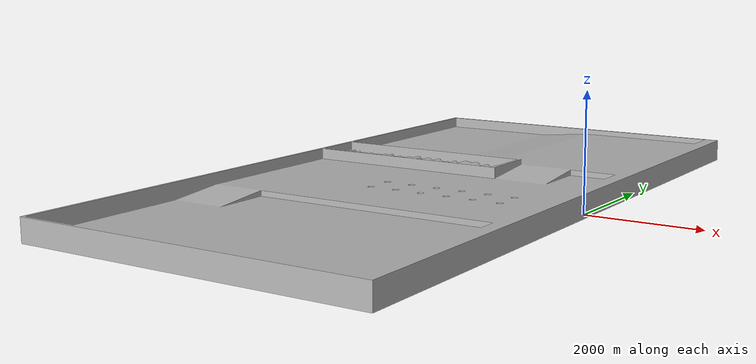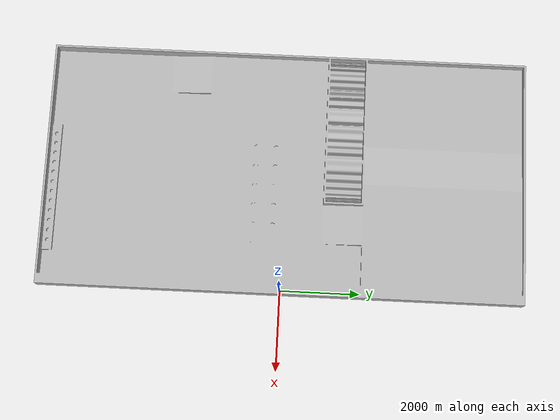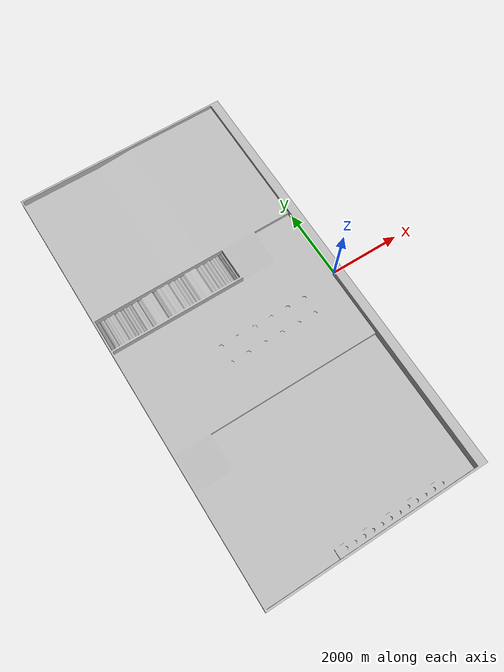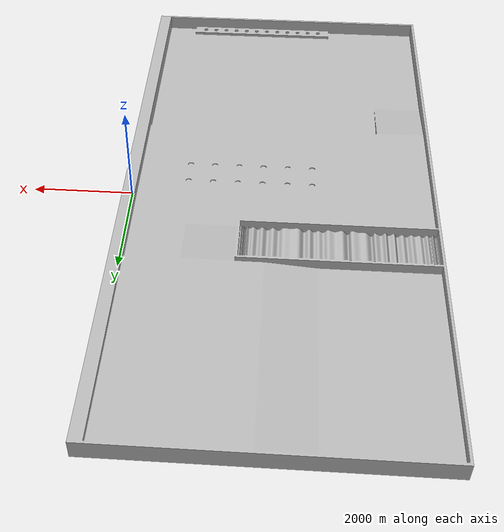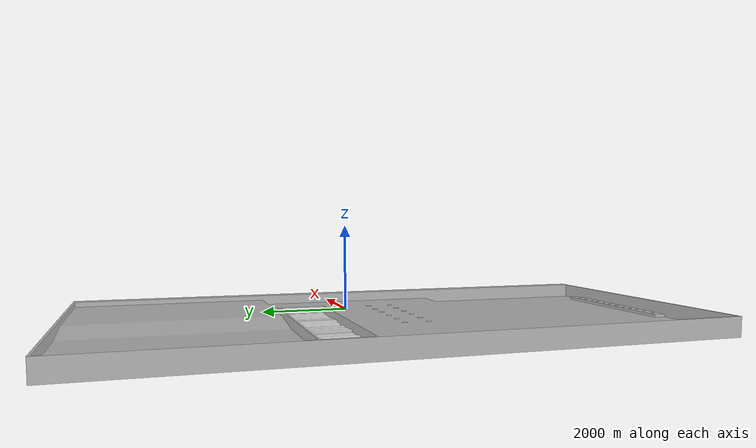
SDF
<?xml version="1.0" ?>
<sdf version="1.6">
  <model name="rc_cd">
    <static>true</static>
    <link name="link">
      <inertial>
        <pose>-43.151 -9.4559 36.683 0 0 0</pose>
        <mass>10402000</mass>
        <inertia>
          <ixx>3970000000</ixx>
          <ixy>20876000</ixy>
          <ixz>613230000</ixz>
          <iyy>9033200000</iyy>
          <iyz>-269580000</iyz>
          <izz>5839000000</izz>
        </inertia>
      </inertial>
      <collision name="collision">
        <geometry>
          <mesh>
            <uri>model://rc_cd/meshes/Arena_24.dae</uri>
          </mesh>
        </geometry>
      </collision>
      <visual name="visual">
        <geometry>
          <mesh>
            <uri>model://rc_cd/meshes/Arena_24.dae</uri>
          </mesh>
        </geometry>
      </visual>
    </link>
  </model>
</sdf>
